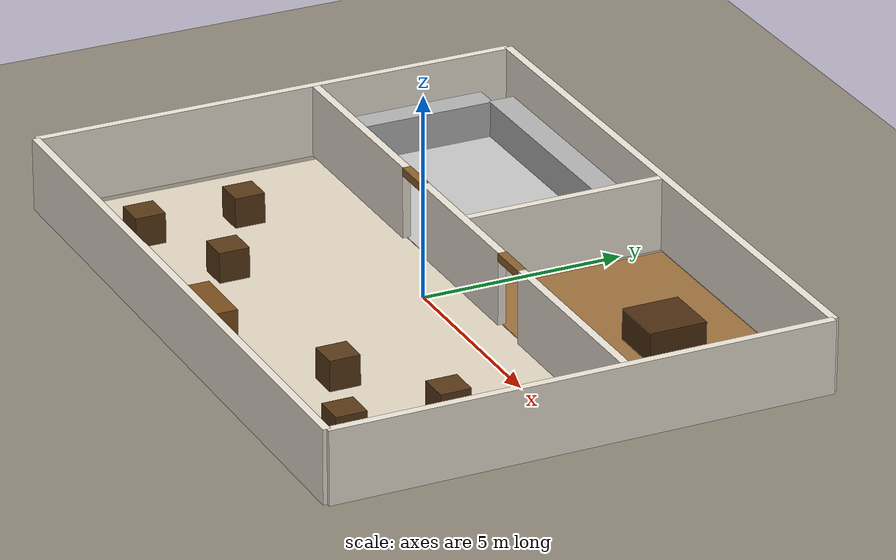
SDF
<?xml version="1.0" ?>
<sdf version="1.6">
  <world name="mecanum_world">

    <!-- ── Physics ────────────────────────────────────────────── -->
    <physics name="1ms" type="ignored">
      <max_step_size>0.001</max_step_size>
      <real_time_factor>1.0</real_time_factor>
    </physics>

    <!-- ── Core Ignition plugins ──────────────────────────────── -->
    <plugin filename="ignition-gazebo-physics-system"
            name="ignition::gazebo::systems::Physics"/>
    <plugin filename="ignition-gazebo-user-commands-system"
            name="ignition::gazebo::systems::UserCommands"/>
    <plugin filename="ignition-gazebo-scene-broadcaster-system"
            name="ignition::gazebo::systems::SceneBroadcaster"/>
    <plugin filename="ignition-gazebo-sensors-system"
            name="ignition::gazebo::systems::Sensors">
      <render_engine>ogre2</render_engine>
    </plugin>

    <!-- ── Sunlight ───────────────────────────────────────────── -->
    <light type="directional" name="sun">
      <cast_shadows>true</cast_shadows>
      <pose>0 0 20 0 0 0</pose>
      <diffuse>0.95 0.92 0.85 1</diffuse>
      <specular>0.4 0.4 0.4 1</specular>
      <attenuation>
        <range>1000</range><constant>0.9</constant>
        <linear>0.01</linear><quadratic>0.001</quadratic>
      </attenuation>
      <direction>-0.4 0.1 -0.9</direction>
    </light>

    <!-- Warm indoor fill light (main hall) -->
    <light name="hall_light" type="point">
      <pose>0 -2 3.5 0 0 0</pose>
      <diffuse>1.0 0.92 0.75 1</diffuse>
      <specular>0.3 0.28 0.20 1</specular>
      <attenuation>
        <range>12</range><constant>0.4</constant>
        <linear>0.05</linear><quadratic>0.01</quadratic>
      </attenuation>
      <cast_shadows>false</cast_shadows>
    </light>

    <!-- Kitchen ceiling light -->
    <light name="kitchen_light" type="point">
      <pose>-4 3.5 3.5 0 0 0</pose>
      <diffuse>0.85 0.90 0.95 1</diffuse>
      <specular>0.20 0.22 0.25 1</specular>
      <attenuation>
        <range>10</range><constant>0.5</constant>
        <linear>0.05</linear><quadratic>0.01</quadratic>
      </attenuation>
      <cast_shadows>false</cast_shadows>
    </light>

    <!-- Private dining warm light -->
    <light name="private_light" type="point">
      <pose>4.5 3.5 3.5 0 0 0</pose>
      <diffuse>1.0 0.88 0.65 1</diffuse>
      <specular>0.25 0.22 0.15 1</specular>
      <attenuation>
        <range>10</range><constant>0.5</constant>
        <linear>0.05</linear><quadratic>0.01</quadratic>
      </attenuation>
      <cast_shadows>false</cast_shadows>
    </light>

    <!-- ════════════════════════════════════════════════════════════
         GROUND PLANE
    ════════════════════════════════════════════════════════════ -->
    <model name="ground_plane">
      <static>true</static>
      <link name="link">
        <collision name="collision">
          <geometry>
            <plane><normal>0 0 1</normal><size>100 100</size></plane>
          </geometry>
          <surface><friction><ode><mu>50</mu><mu2>50</mu2></ode></friction></surface>
        </collision>
        <visual name="visual">
          <geometry>
            <plane><normal>0 0 1</normal><size>100 100</size></plane>
          </geometry>
          <material>
            <ambient>0.55 0.52 0.47 1</ambient>
            <diffuse>0.55 0.52 0.47 1</diffuse>
            <specular>0.05 0.05 0.05 1</specular>
          </material>
        </visual>
      </link>
    </model>

    <!-- ── Floor tiles: different colour per room ────────────── -->
    <!-- Main dining hall floor — warm cream tile -->
    <model name="floor_main">
      <static>true</static>
      <pose>0 -2.5 0.002 0 0 0</pose>
      <link name="link">
        <visual name="v">
          <geometry><box><size>15.6 7.0 0.004</size></box></geometry>
          <material>
            <ambient>0.88 0.84 0.76 1</ambient>
            <diffuse>0.88 0.84 0.76 1</diffuse>
            <specular>0.12 0.12 0.10 1</specular>
          </material>
        </visual>
      </link>
    </model>

    <!-- Kitchen floor — light grey (clean / industrial) -->
    <model name="floor_kitchen">
      <static>true</static>
      <pose>-4 3.5 0.002 0 0 0</pose>
      <link name="link">
        <visual name="v">
          <geometry><box><size>7.6 4.96 0.004</size></box></geometry>
          <material>
            <ambient>0.78 0.78 0.78 1</ambient>
            <diffuse>0.78 0.78 0.78 1</diffuse>
            <specular>0.20 0.20 0.20 1</specular>
          </material>
        </visual>
      </link>
    </model>

    <!-- Private dining floor — warm wood tone -->
    <model name="floor_private">
      <static>true</static>
      <pose>4 3.5 0.002 0 0 0</pose>
      <link name="link">
        <visual name="v">
          <geometry><box><size>7.6 4.96 0.004</size></box></geometry>
          <material>
            <ambient>0.62 0.44 0.24 1</ambient>
            <diffuse>0.62 0.44 0.24 1</diffuse>
            <specular>0.18 0.12 0.06 1</specular>
          </material>
        </visual>
      </link>
    </model>

    <!-- North outer wall  y=+6.1 -->
    <model name="wall_outer_north">
      <static>true</static>
      <pose>0 6.1 0.9 0 0 0</pose>
      <link name="link">
        <collision name="c"><geometry><box><size>16.2 0.2 1.8</size></box></geometry></collision>
        <visual name="v">
          <geometry><box><size>16.2 0.2 1.8</size></box></geometry>
          <material>
            <ambient>0.92 0.89 0.84 1</ambient>
            <diffuse>0.92 0.89 0.84 1</diffuse>
            <specular>0.08 0.08 0.07 1</specular>
          </material>
        </visual>
      </link>
    </model>

    <!-- South outer wall  y=-6.1 -->
    <model name="wall_outer_south">
      <static>true</static>
      <pose>0 -6.1 0.9 0 0 0</pose>
      <link name="link">
        <collision name="c"><geometry><box><size>16.2 0.2 1.8</size></box></geometry></collision>
        <visual name="v">
          <geometry><box><size>16.2 0.2 1.8</size></box></geometry>
          <material>
            <ambient>0.92 0.89 0.84 1</ambient>
            <diffuse>0.92 0.89 0.84 1</diffuse>
            <specular>0.08 0.08 0.07 1</specular>
          </material>
        </visual>
      </link>
    </model>

    <!-- East outer wall  x=+8.1 -->
    <model name="wall_outer_east">
      <static>true</static>
      <pose>8.1 0 0.9 0 0 0</pose>
      <link name="link">
        <collision name="c"><geometry><box><size>0.2 12.2 1.8</size></box></geometry></collision>
        <visual name="v">
          <geometry><box><size>0.2 12.2 1.8</size></box></geometry>
          <material>
            <ambient>0.92 0.89 0.84 1</ambient>
            <diffuse>0.92 0.89 0.84 1</diffuse>
            <specular>0.08 0.08 0.07 1</specular>
          </material>
        </visual>
      </link>
    </model>

    <!-- West outer wall  x=-8.1 -->
    <model name="wall_outer_west">
      <static>true</static>
      <pose>-8.1 0 0.9 0 0 0</pose>
      <link name="link">
        <collision name="c"><geometry><box><size>0.2 12.2 1.8</size></box></geometry></collision>
        <visual name="v">
          <geometry><box><size>0.2 12.2 1.8</size></box></geometry>
          <material>
            <ambient>0.92 0.89 0.84 1</ambient>
            <diffuse>0.92 0.89 0.84 1</diffuse>
            <specular>0.08 0.08 0.07 1</specular>
          </material>
        </visual>
      </link>
    </model>

    <!-- West segment: x = -8.0 to -3.0  (length 5 m) -->
    <model name="wall_div_h_west">
      <static>true</static>
      <pose>-5.5 1.0 0.9 0 0 0</pose>
      <link name="link">
        <collision name="c"><geometry><box><size>5.0 0.2 1.8</size></box></geometry></collision>
        <visual name="v">
          <geometry><box><size>5.0 0.2 1.8</size></box></geometry>
          <material>
            <ambient>0.92 0.89 0.84 1</ambient>
            <diffuse>0.92 0.89 0.84 1</diffuse>
            <specular>0.08 0.08 0.07 1</specular>
          </material>
        </visual>
      </link>
    </model>

    <!-- Middle segment: x = -2.0 to +2.0  (length 4 m, between the two doors) -->
    <model name="wall_div_h_mid">
      <static>true</static>
      <pose>0 1.0 0.9 0 0 0</pose>
      <link name="link">
        <collision name="c"><geometry><box><size>4.0 0.2 1.8</size></box></geometry></collision>
        <visual name="v">
          <geometry><box><size>4.0 0.2 1.8</size></box></geometry>
          <material>
            <ambient>0.92 0.89 0.84 1</ambient>
            <diffuse>0.92 0.89 0.84 1</diffuse>
            <specular>0.08 0.08 0.07 1</specular>
          </material>
        </visual>
      </link>
    </model>

    <!-- East segment: x = +3.0 to +8.0  (length 5 m) -->
    <model name="wall_div_h_east">
      <static>true</static>
      <pose>5.5 1.0 0.9 0 0 0</pose>
      <link name="link">
        <collision name="c"><geometry><box><size>5.0 0.2 1.8</size></box></geometry></collision>
        <visual name="v">
          <geometry><box><size>5.0 0.2 1.8</size></box></geometry>
          <material>
            <ambient>0.92 0.89 0.84 1</ambient>
            <diffuse>0.92 0.89 0.84 1</diffuse>
            <specular>0.08 0.08 0.07 1</specular>
          </material>
        </visual>
      </link>
    </model>

    <model name="wall_div_v">
      <static>true</static>
      <pose>0 3.5 0.9 0 0 0</pose>
      <link name="link">
        <collision name="c"><geometry><box><size>0.2 5.0 1.8</size></box></geometry></collision>
        <visual name="v">
          <geometry><box><size>0.2 5.0 1.8</size></box></geometry>
          <material>
            <ambient>0.92 0.89 0.84 1</ambient>
            <diffuse>0.92 0.89 0.84 1</diffuse>
            <specular>0.08 0.08 0.07 1</specular>
          </material>
        </visual>
      </link>
    </model>

    <!-- Kitchen doorway header (above the 1 m gap at x=-2.5) -->
    <model name="door_frame_kitchen">
      <static>true</static>
      <pose>-2.5 1.0 1.7 0 0 0</pose>
      <link name="link">
        <visual name="v">
          <geometry><box><size>1.0 0.22 0.2</size></box></geometry>
          <material>
            <ambient>0.55 0.38 0.18 1</ambient>
            <diffuse>0.55 0.38 0.18 1</diffuse>
            <specular>0.15 0.10 0.05 1</specular>
          </material>
        </visual>
      </link>
    </model>

    <!-- Private dining doorway header (above the 1 m gap at x=+2.5) -->
    <model name="door_frame_private">
      <static>true</static>
      <pose>2.5 1.0 1.7 0 0 0</pose>
      <link name="link">
        <visual name="v">
          <geometry><box><size>1.0 0.22 0.2</size></box></geometry>
          <material>
            <ambient>0.55 0.38 0.18 1</ambient>
            <diffuse>0.55 0.38 0.18 1</diffuse>
            <specular>0.15 0.10 0.05 1</specular>
          </material>
        </visual>
      </link>
    </model>

    <!-- Row 1 (y ≈ -4.5) — west side -->
    <model name="table_1">
      <static>true</static>
      <pose>-5.5 -4.5 0.38 0 0 0</pose>
      <link name="link">
        <collision name="c"><geometry><box><size>0.75 0.75 0.76</size></box></geometry></collision>
        <visual name="v">
          <geometry><box><size>0.75 0.75 0.76</size></box></geometry>
          <material>
            <ambient>0.32 0.20 0.08 1</ambient>
            <diffuse>0.35 0.22 0.09 1</diffuse>
            <specular>0.12 0.08 0.03 1</specular>
          </material>
        </visual>
      </link>
    </model>

    <model name="table_2">
      <static>true</static>
      <pose>-5.5 -2.0 0.38 0 0 0</pose>
      <link name="link">
        <collision name="c"><geometry><box><size>0.75 0.75 0.76</size></box></geometry></collision>
        <visual name="v">
          <geometry><box><size>0.75 0.75 0.76</size></box></geometry>
          <material>
            <ambient>0.32 0.20 0.08 1</ambient>
            <diffuse>0.35 0.22 0.09 1</diffuse>
            <specular>0.12 0.08 0.03 1</specular>
          </material>
        </visual>
      </link>
    </model>

    <!-- Row 1 — east side -->
    <model name="table_3">
      <static>true</static>
      <pose>5.5 -4.5 0.38 0 0 0</pose>
      <link name="link">
        <collision name="c"><geometry><box><size>0.75 0.75 0.76</size></box></geometry></collision>
        <visual name="v">
          <geometry><box><size>0.75 0.75 0.76</size></box></geometry>
          <material>
            <ambient>0.32 0.20 0.08 1</ambient>
            <diffuse>0.35 0.22 0.09 1</diffuse>
            <specular>0.12 0.08 0.03 1</specular>
          </material>
        </visual>
      </link>
    </model>

    <model name="table_4">
      <static>true</static>
      <pose>5.5 -2.0 0.38 0 0 0</pose>
      <link name="link">
        <collision name="c"><geometry><box><size>0.75 0.75 0.76</size></box></geometry></collision>
        <visual name="v">
          <geometry><box><size>0.75 0.75 0.76</size></box></geometry>
          <material>
            <ambient>0.32 0.20 0.08 1</ambient>
            <diffuse>0.35 0.22 0.09 1</diffuse>
            <specular>0.12 0.08 0.03 1</specular>
          </material>
        </visual>
      </link>
    </model>

    <!-- Centre table (in front of robot start) -->
    <model name="table_5">
      <static>true</static>
      <pose>3.0 -3.5 0.38 0 0 0</pose>
      <link name="link">
        <collision name="c"><geometry><box><size>0.75 0.75 0.76</size></box></geometry></collision>
        <visual name="v">
          <geometry><box><size>0.75 0.75 0.76</size></box></geometry>
          <material>
            <ambient>0.32 0.20 0.08 1</ambient>
            <diffuse>0.35 0.22 0.09 1</diffuse>
            <specular>0.12 0.08 0.03 1</specular>
          </material>
        </visual>
      </link>
    </model>

    <model name="table_6">
      <static>true</static>
      <pose>-3.0 -3.5 0.38 0 0 0</pose>
      <link name="link">
        <collision name="c"><geometry><box><size>0.75 0.75 0.76</size></box></geometry></collision>
        <visual name="v">
          <geometry><box><size>0.75 0.75 0.76</size></box></geometry>
          <material>
            <ambient>0.32 0.20 0.08 1</ambient>
            <diffuse>0.35 0.22 0.09 1</diffuse>
            <specular>0.12 0.08 0.03 1</specular>
          </material>
        </visual>
      </link>
    </model>

    <!-- Host/reception stand near south entrance -->
    <model name="reception_desk">
      <static>true</static>
      <pose>0 -5.2 0.55 0 0 0</pose>
      <link name="link">
        <collision name="c"><geometry><box><size>1.6 0.55 1.1</size></box></geometry></collision>
        <visual name="v">
          <geometry><box><size>1.6 0.55 1.1</size></box></geometry>
          <material>
            <ambient>0.45 0.28 0.10 1</ambient>
            <diffuse>0.48 0.30 0.11 1</diffuse>
            <specular>0.18 0.11 0.04 1</specular>
          </material>
        </visual>
      </link>
    </model>

    <!-- ════════════════════════════════════════════════════════════
         KITCHEN FURNITURE
    ════════════════════════════════════════════════════════════ -->

    <!-- Main prep counter along north wall -->
    <model name="kitchen_counter_north">
      <static>true</static>
      <pose>-4.0 5.5 0.45 0 0 0</pose>
      <link name="link">
        <collision name="c"><geometry><box><size>6.5 0.65 0.90</size></box></geometry></collision>
        <visual name="v">
          <geometry><box><size>6.5 0.65 0.90</size></box></geometry>
          <material>
            <ambient>0.68 0.68 0.68 1</ambient>
            <diffuse>0.70 0.70 0.70 1</diffuse>
            <specular>0.45 0.45 0.45 1</specular>
          </material>
        </visual>
      </link>
    </model>

    <!-- Side prep counter along west wall -->
    <model name="kitchen_counter_west">
      <static>true</static>
      <pose>-7.5 3.5 0.45 0 0 0</pose>
      <link name="link">
        <collision name="c"><geometry><box><size>0.65 3.5 0.90</size></box></geometry></collision>
        <visual name="v">
          <geometry><box><size>0.65 3.5 0.90</size></box></geometry>
          <material>
            <ambient>0.68 0.68 0.68 1</ambient>
            <diffuse>0.70 0.70 0.70 1</diffuse>
            <specular>0.45 0.45 0.45 1</specular>
          </material>
        </visual>
      </link>
    </model>

    <!-- ════════════════════════════════════════════════════════════
         PRIVATE DINING FURNITURE
    ════════════════════════════════════════════════════════════ -->

    <!-- Large round (approx) dining table -->
    <model name="private_table">
      <static>true</static>
      <pose>4.5 3.8 0.38 0 0 0</pose>
      <link name="link">
        <collision name="c"><geometry><box><size>1.4 1.4 0.76</size></box></geometry></collision>
        <visual name="v">
          <geometry><box><size>1.4 1.4 0.76</size></box></geometry>
          <material>
            <ambient>0.28 0.16 0.06 1</ambient>
            <diffuse>0.30 0.18 0.07 1</diffuse>
            <specular>0.18 0.10 0.04 1</specular>
          </material>
        </visual>
      </link>
    </model>

    <!-- Small side cabinet -->
    <model name="private_cabinet">
      <static>true</static>
      <pose>7.5 5.3 0.60 0 0 0</pose>
      <link name="link">
        <collision name="c"><geometry><box><size>0.60 1.20 1.20</size></box></geometry></collision>
        <visual name="v">
          <geometry><box><size>0.60 1.20 1.20</size></box></geometry>
          <material>
            <ambient>0.35 0.22 0.08 1</ambient>
            <diffuse>0.37 0.24 0.09 1</diffuse>
            <specular>0.12 0.08 0.03 1</specular>
          </material>
        </visual>
      </link>
    </model>

  </world>
</sdf>
